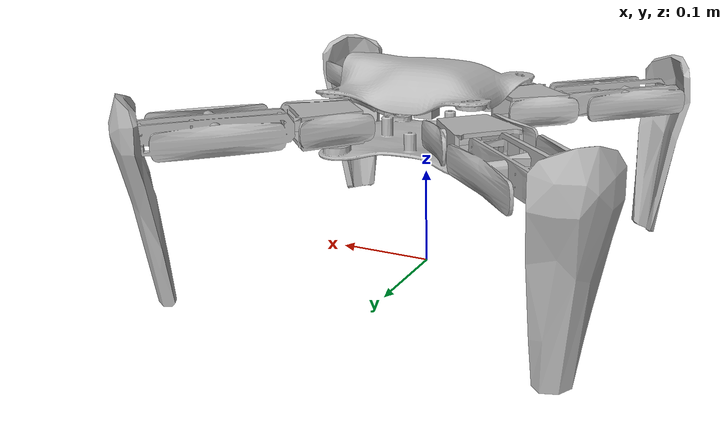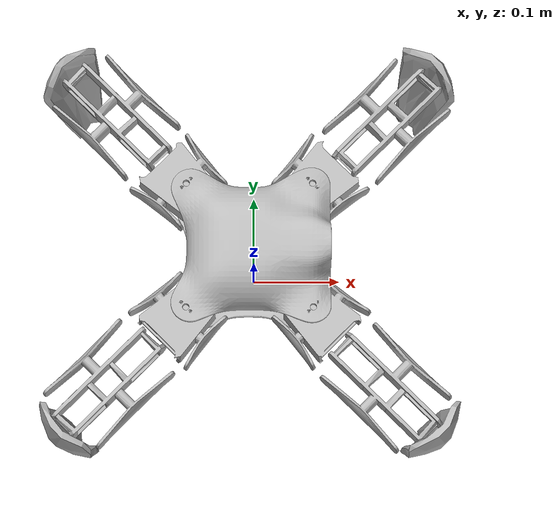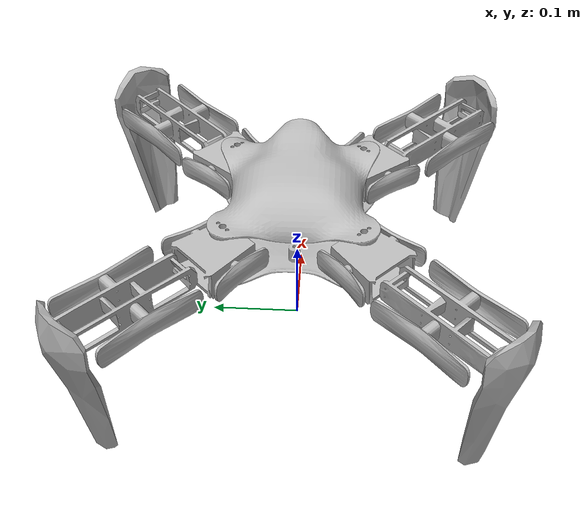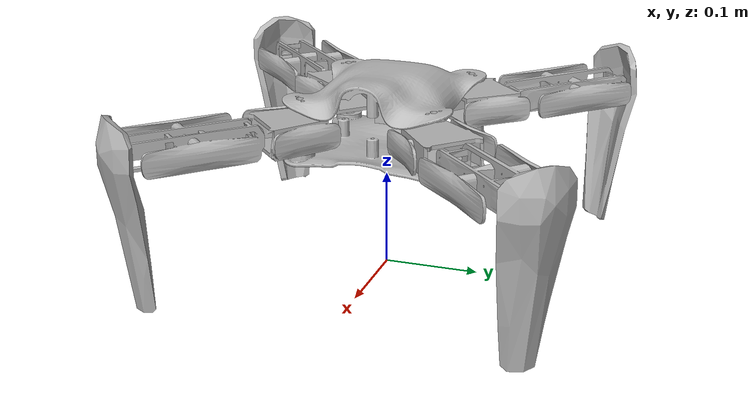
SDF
<sdf version='1.6'>
  <model name='jebediah'>
    <link name='base_link'>
      <pose frame=''>0 0 0 0 -0 0</pose>
      <inertial>
        <pose frame=''>0 0 0 0 -0 0</pose>
        <mass>0.804</mass>
        <inertia>
          <ixx>0.00102328</ixx>
          <ixy>-1.09233e-06</ixy>
          <ixz>-1.70446e-05</ixz>
          <iyy>0.00112582</iyy>
          <iyz>-2.26629e-07</iyz>
          <izz>0.00147666</izz>
        </inertia>
      </inertial>
      <collision name='base_link_collision'>
        <pose frame=''>0 0 0 0 -0 0</pose>
        <geometry>
          <mesh>
            <scale>1 1 1</scale>
            <uri>model://jebediah/meshes/base_link_collision.stl</uri>
          </mesh>
        </geometry>
      </collision>
      <collision name='base_link_inertia_collision_1'>
        <pose frame=''>0 0 0 0 -0 0</pose>
        <geometry>
          <box>
            <size>0.02 0.02 0.02</size>
          </box>
        </geometry>
      </collision>
      <visual name='base_link_visual'>
        <pose frame=''>0 0 0 0 -0 0</pose>
        <geometry>
          <mesh>
            <scale>1 1 1</scale>
            <uri>model://jebediah/meshes/base_link.stl</uri>
          </mesh>
        </geometry>
      </visual>
      <visual name='base_link_inertia_visual_1'>
        <pose frame=''>0 0 0 0 -0 0</pose>
        <geometry>
          <box>
            <size>0.02 0.02 0.02</size>
          </box>
        </geometry>
      </visual>
    </link>
    <link name='coxa_1'>
      <pose frame=''>0.064888 -0.069996 -0.034543 0 -0 -0.78456</pose>
      <inertial>
        <pose frame=''>0.01481 -2.2e-05 0.029381 0 -0 0</pose>
        <mass>0.124104</mass>
        <inertia>
          <ixx>8.18267e-05</ixx>
          <ixy>-1.14316e-08</ixy>
          <ixz>6.1428e-07</ixz>
          <iyy>7.27029e-05</iyy>
          <iyz>2.00528e-08</iyz>
          <izz>0.000120694</izz>
        </inertia>
      </inertial>
      <collision name='coxa_1_collision'>
        <pose frame=''>0 0 0 0 -0 0</pose>
        <geometry>
          <mesh>
            <scale>1 1 1</scale>
            <uri>model://jebediah/meshes/coxa_collision.stl</uri>
          </mesh>
        </geometry>
      </collision>
      <visual name='coxa_1_visual'>
        <pose frame=''>0 0 0 0 -0 0</pose>
        <geometry>
          <mesh>
            <scale>1 1 1</scale>
            <uri>model://jebediah/meshes/coxa.stl</uri>
          </mesh>
        </geometry>
      </visual>
    </link>
    <joint name='servo_coxa_1' type='revolute'>
      <child>coxa_1</child>
      <parent>base_link</parent>
      <axis>
        <xyz>-0 0 1</xyz>
        <limit>
          <lower>-1.4</lower>
          <upper>1.4</upper>
          <effort>0.9</effort>
          <velocity>5</velocity>
        </limit>
        <dynamics>
          <spring_reference>0</spring_reference>
          <spring_stiffness>0</spring_stiffness>
        </dynamics>
        <use_parent_model_frame>1</use_parent_model_frame>
      </axis>
    </joint>
    <link name='femur_1'>
      <pose frame=''>0.090573 -0.135795 -0.005543 0 -0 -0.78456</pose>
      <inertial>
        <pose frame=''>0.051468 0.026889 1.6e-05 0 -0 0</pose>
        <mass>0.158176</mass>
        <inertia>
          <ixx>8.72873e-05</ixx>
          <ixy>1.35181e-10</ixy>
          <ixz>-6.32792e-12</ixz>
          <iyy>0.000251934</iyy>
          <iyz>-3.84978e-08</iyz>
          <izz>0.000324907</izz>
        </inertia>
      </inertial>
      <collision name='femur_1_collision'>
        <pose frame=''>0 0 0 0 -0 0</pose>
        <geometry>
          <mesh>
            <scale>1 1 1</scale>
            <uri>model://jebediah/meshes/femur_collision.stl</uri>
          </mesh>
        </geometry>
      </collision>
      <visual name='femur_1_visual'>
        <pose frame=''>0 0 0 0 -0 0</pose>
        <geometry>
          <mesh>
            <scale>1 1 1</scale>
            <uri>model://jebediah/meshes/femur.stl</uri>
          </mesh>
        </geometry>
      </visual>
    </link>
    <joint name='servo_femur_1_1' type='revolute'>
      <child>femur_1</child>
      <parent>coxa_1</parent>
      <axis>
        <xyz>0.706514 0.707699 0</xyz>
        <limit>
          <lower>-1.4</lower>
          <upper>1.4</upper>
          <effort>0.9</effort>
          <velocity>5</velocity>
        </limit>
        <dynamics>
          <spring_reference>0</spring_reference>
          <spring_stiffness>0</spring_stiffness>
        </dynamics>
        <use_parent_model_frame>1</use_parent_model_frame>
      </axis>
    </joint>
    <link name='tibia_1'>
      <pose frame=''>0.183502 -0.188411 -0.005543 0 -0 -0.78456</pose>
      <inertial>
        <pose frame=''>0.017792 -3.6e-05 -0.048313 0 -0 0</pose>
        <mass>0.170868</mass>
        <inertia>
          <ixx>0.000589379</ixx>
          <ixy>3.67753e-09</ixy>
          <ixz>-6.30008e-05</ixz>
          <iyy>0.000541032</iyy>
          <iyz>-9.23621e-09</iyz>
          <izz>8.24623e-05</izz>
        </inertia>
      </inertial>
      <collision name='tibia_1_col_collision'>
        <pose frame=''>0 0 0 0 -0 0</pose>
        <geometry>
          <mesh>
            <scale>1 1 1</scale>
            <uri>model://jebediah/meshes/tibia_collision.stl</uri>
          </mesh>
        </geometry>
        <surface>
          <contact>
            <ode/>
          </contact>
          <friction>
            <ode/>
          </friction>
        </surface>
      </collision>
      <visual name='tibia_1_visual'>
        <pose frame=''>0 0 0 0 -0 0</pose>
        <geometry>
          <mesh>
            <scale>1 1 1</scale>
            <uri>model://jebediah/meshes/tibia.stl</uri>
          </mesh>
        </geometry>
        <material>
          <script>
            <uri>__default__</uri>
            <name>__default__</name>
          </script>
        </material>
      </visual>
      <gravity>1</gravity>
      <velocity_decay/>
      <sensor name='tibia_1_conctact_sensor' type='contact'>
        <always_on>1</always_on>
        <update_rate>50</update_rate>
        <contact>
          <collision>tibia_1_col_collision</collision>
          <topic>__default_topic__</topic>
        </contact>
        <plugin name='tibia_1_bumper' filename='libgazebo_ros_bumper.so'>
          <bumperTopicName>jebediah/tibia_1_conctact_sensor</bumperTopicName>
          <frameName>tibia_1</frameName>
        </plugin>
      </sensor>
    </link>
    <joint name='servo_femur_1_2' type='revolute'>
      <child>tibia_1</child>
      <parent>femur_1</parent>
      <axis>
        <xyz>0.706514 0.707699 0</xyz>
        <limit>
          <lower>-1.4</lower>
          <upper>1.4</upper>
          <effort>0.9</effort>
          <velocity>5</velocity>
        </limit>
        <dynamics>
          <spring_reference>0</spring_reference>
          <spring_stiffness>0</spring_stiffness>
        </dynamics>
        <use_parent_model_frame>1</use_parent_model_frame>
      </axis>
    </joint>
    <link name='coxa_2'>
      <pose frame=''>0.064888 0.070004 -0.034543 -0 -0 0.78623</pose>
      <inertial>
        <pose frame=''>0.01481 -2.2e-05 0.029381 0 -0 0</pose>
        <mass>0.124104</mass>
        <inertia>
          <ixx>8.18267e-05</ixx>
          <ixy>-1.14316e-08</ixy>
          <ixz>6.1428e-07</ixz>
          <iyy>7.27029e-05</iyy>
          <iyz>2.00528e-08</iyz>
          <izz>0.000120694</izz>
        </inertia>
      </inertial>
      <collision name='coxa_2_collision'>
        <pose frame=''>0 0 0 0 -0 0</pose>
        <geometry>
          <mesh>
            <scale>1 1 1</scale>
            <uri>model://jebediah/meshes/coxa_collision.stl</uri>
          </mesh>
        </geometry>
      </collision>
      <visual name='coxa_2_visual'>
        <pose frame=''>0 0 0 0 -0 0</pose>
        <geometry>
          <mesh>
            <scale>1 1 1</scale>
            <uri>model://jebediah/meshes/coxa.stl</uri>
          </mesh>
        </geometry>
      </visual>
    </link>
    <joint name='servo_coxa_2' type='revolute'>
      <child>coxa_2</child>
      <parent>base_link</parent>
      <axis>
        <xyz>-0 0 1</xyz>
        <limit>
          <lower>-1.4</lower>
          <upper>1.4</upper>
          <effort>0.9</effort>
          <velocity>5</velocity>
        </limit>
        <dynamics>
          <spring_reference>0</spring_reference>
          <spring_stiffness>0</spring_stiffness>
        </dynamics>
        <use_parent_model_frame>1</use_parent_model_frame>
      </axis>
    </joint>
    <link name='femur_2'>
      <pose frame=''>0.130687 0.095689 -0.005543 -0 -0 0.78623</pose>
      <inertial>
        <pose frame=''>0.051468 0.026889 1.6e-05 0 -0 0</pose>
        <mass>0.158176</mass>
        <inertia>
          <ixx>8.72873e-05</ixx>
          <ixy>1.35178e-10</ixy>
          <ixz>-6.32836e-12</ixz>
          <iyy>0.000251934</iyy>
          <iyz>-3.84978e-08</iyz>
          <izz>0.000324907</izz>
        </inertia>
      </inertial>
      <collision name='femur_2_collision'>
        <pose frame=''>0 0 0 0 -0 0</pose>
        <geometry>
          <mesh>
            <scale>1 1 1</scale>
            <uri>model://jebediah/meshes/femur_collision.stl</uri>
          </mesh>
        </geometry>
      </collision>
      <visual name='femur_2_visual'>
        <pose frame=''>0 0 0 0 -0 0</pose>
        <geometry>
          <mesh>
            <scale>1 1 1</scale>
            <uri>model://jebediah/meshes/femur.stl</uri>
          </mesh>
        </geometry>
      </visual>
    </link>
    <joint name='servo_femur_2_1' type='revolute'>
      <child>femur_2</child>
      <parent>coxa_2</parent>
      <axis>
        <xyz>0.707695 -0.706518 0</xyz>
        <limit>
          <lower>-1.4</lower>
          <upper>1.4</upper>
          <effort>0.9</effort>
          <velocity>5</velocity>
        </limit>
        <dynamics>
          <spring_reference>0</spring_reference>
          <spring_stiffness>0</spring_stiffness>
        </dynamics>
        <use_parent_model_frame>1</use_parent_model_frame>
      </axis>
    </joint>
    <link name='tibia_2'>
      <pose frame=''>0.183304 0.188617 -0.005543 -0 -0 0.78623</pose>
      <inertial>
        <pose frame=''>0.017792 -3.6e-05 -0.048313 0 -0 0</pose>
        <mass>0.170868</mass>
        <inertia>
          <ixx>0.000589379</ixx>
          <ixy>3.68459e-09</ixy>
          <ixz>-6.30008e-05</ixz>
          <iyy>0.000541032</iyy>
          <iyz>-9.2363e-09</iyz>
          <izz>8.24623e-05</izz>
        </inertia>
      </inertial>
      <collision name='tibia_2_col_collision'>
        <pose frame=''>0 0 0 0 -0 0</pose>
        <geometry>
          <mesh>
            <scale>1 1 1</scale>
            <uri>model://jebediah/meshes/tibia_collision.stl</uri>
          </mesh>
        </geometry>
        <surface>
          <contact>
            <ode/>
          </contact>
          <friction>
            <ode/>
          </friction>
        </surface>
      </collision>
      <visual name='tibia_2_visual'>
        <pose frame=''>0 0 0 0 -0 0</pose>
        <geometry>
          <mesh>
            <scale>1 1 1</scale>
            <uri>model://jebediah/meshes/tibia.stl</uri>
          </mesh>
        </geometry>
        <material>
          <script>
            <uri>__default__</uri>
            <name>__default__</name>
          </script>
        </material>
      </visual>
      <gravity>1</gravity>
      <velocity_decay/>
      <sensor name='tibia_2_conctact_sensor' type='contact'>
        <always_on>1</always_on>
        <update_rate>50</update_rate>
        <contact>
          <collision>tibia_2_col_collision</collision>
          <topic>__default_topic__</topic>
        </contact>
        <plugin name='tibia_2_bumper' filename='libgazebo_ros_bumper.so'>
          <bumperTopicName>jebediah/tibia_2_conctact_sensor</bumperTopicName>
          <frameName>tibia_2</frameName>
        </plugin>
      </sensor>
    </link>
    <joint name='servo_femur_2_2' type='revolute'>
      <child>tibia_2</child>
      <parent>femur_2</parent>
      <axis>
        <xyz>0.707695 -0.706518 0</xyz>
        <limit>
          <lower>-1.4</lower>
          <upper>1.4</upper>
          <effort>0.9</effort>
          <velocity>5</velocity>
        </limit>
        <dynamics>
          <spring_reference>0</spring_reference>
          <spring_stiffness>0</spring_stiffness>
        </dynamics>
        <use_parent_model_frame>1</use_parent_model_frame>
      </axis>
    </joint>
    <link name='coxa_3'>
      <pose frame=''>-0.075112 0.070004 -0.034543 -0 0 2.357</pose>
      <inertial>
        <pose frame=''>0.01481 -2.2e-05 0.029381 0 -0 0</pose>
        <mass>0.124104</mass>
        <inertia>
          <ixx>8.18267e-05</ixx>
          <ixy>-1.14302e-08</ixy>
          <ixz>6.1428e-07</ixz>
          <iyy>7.27029e-05</iyy>
          <iyz>2.00526e-08</iyz>
          <izz>0.000120694</izz>
        </inertia>
      </inertial>
      <collision name='coxa_3_collision'>
        <pose frame=''>0 0 0 0 -0 0</pose>
        <geometry>
          <mesh>
            <scale>1 1 1</scale>
            <uri>model://jebediah/meshes/coxa_collision.stl</uri>
          </mesh>
        </geometry>
      </collision>
      <visual name='coxa_3_visual'>
        <pose frame=''>0 0 0 0 -0 0</pose>
        <geometry>
          <mesh>
            <scale>1 1 1</scale>
            <uri>model://jebediah/meshes/coxa.stl</uri>
          </mesh>
        </geometry>
      </visual>
    </link>
    <joint name='servo_coxa_3' type='revolute'>
      <child>coxa_3</child>
      <parent>base_link</parent>
      <axis>
        <xyz>-0 -0 1</xyz>
        <limit>
          <lower>-1.4</lower>
          <upper>1.4</upper>
          <effort>0.9</effort>
          <velocity>5</velocity>
        </limit>
        <dynamics>
          <spring_reference>0</spring_reference>
          <spring_stiffness>0</spring_stiffness>
        </dynamics>
        <use_parent_model_frame>1</use_parent_model_frame>
      </axis>
    </joint>
    <link name='femur'>
      <pose frame=''>-0.100795 0.135804 -0.005543 -0 0 2.357</pose>
      <inertial>
        <pose frame=''>0.051468 0.026889 1.6e-05 0 -0 0</pose>
        <mass>0.158176</mass>
        <inertia>
          <ixx>8.72873e-05</ixx>
          <ixy>1.35183e-10</ixy>
          <ixz>-6.32861e-12</ixz>
          <iyy>0.000251934</iyy>
          <iyz>-3.84978e-08</iyz>
          <izz>0.000324907</izz>
        </inertia>
      </inertial>
      <collision name='femur_collision'>
        <pose frame=''>0 0 0 0 -0 0</pose>
        <geometry>
          <mesh>
            <scale>1 1 1</scale>
            <uri>model://jebediah/meshes/femur_collision.stl</uri>
          </mesh>
        </geometry>
      </collision>
      <visual name='femur_visual'>
        <pose frame=''>0 0 0 0 -0 0</pose>
        <geometry>
          <mesh>
            <scale>1 1 1</scale>
            <uri>model://jebediah/meshes/femur.stl</uri>
          </mesh>
        </geometry>
      </visual>
    </link>
    <joint name='servo_femur_3_1' type='revolute'>
      <child>femur</child>
      <parent>coxa_3</parent>
      <axis>
        <xyz>0.706537 0.707676 0</xyz>
        <limit>
          <lower>-1.4</lower>
          <upper>1.4</upper>
          <effort>0.9</effort>
          <velocity>5</velocity>
        </limit>
        <dynamics>
          <spring_reference>0</spring_reference>
          <spring_stiffness>0</spring_stiffness>
        </dynamics>
        <use_parent_model_frame>1</use_parent_model_frame>
      </axis>
    </joint>
    <link name='tibia_3'>
      <pose frame=''>-0.193722 0.188423 -0.005543 -0 0 2.357</pose>
      <inertial>
        <pose frame=''>0.017792 -3.6e-05 -0.048313 0 -0 0</pose>
        <mass>0.170868</mass>
        <inertia>
          <ixx>0.000589379</ixx>
          <ixy>3.6838e-09</ixy>
          <ixz>-6.30008e-05</ixz>
          <iyy>0.000541032</iyy>
          <iyz>-9.2364e-09</iyz>
          <izz>8.24623e-05</izz>
        </inertia>
      </inertial>
      <collision name='tibia_3_col_collision'>
        <pose frame=''>0 0 0 0 -0 0</pose>
        <geometry>
          <mesh>
            <scale>1 1 1</scale>
            <uri>model://jebediah/meshes/tibia_collision.stl</uri>
          </mesh>
        </geometry>
        <surface>
          <contact>
            <ode/>
          </contact>
          <friction>
            <ode/>
          </friction>
        </surface>
      </collision>
      <visual name='tibia_3_visual'>
        <pose frame=''>0 0 0 0 -0 0</pose>
        <geometry>
          <mesh>
            <scale>1 1 1</scale>
            <uri>model://jebediah/meshes/tibia.stl</uri>
          </mesh>
        </geometry>
        <material>
          <script>
            <uri>__default__</uri>
            <name>__default__</name>
          </script>
        </material>
      </visual>
      <gravity>1</gravity>
      <velocity_decay/>
      <sensor name='tibia_3_conctact_sensor' type='contact'>
        <always_on>1</always_on>
        <update_rate>50</update_rate>
        <contact>
          <collision>tibia_3_col_collision</collision>
          <topic>__default_topic__</topic>
        </contact>
        <plugin name='tibia_3_bumper' filename='libgazebo_ros_bumper.so'>
          <bumperTopicName>jebediah/tibia_3_conctact_sensor</bumperTopicName>
          <frameName>tibia_3</frameName>
        </plugin>
      </sensor>
    </link>
    <joint name='servo_femur_3_2' type='revolute'>
      <child>tibia_3</child>
      <parent>femur</parent>
      <axis>
        <xyz>0.706537 0.707676 0</xyz>
        <limit>
          <lower>-1.4</lower>
          <upper>1.4</upper>
          <effort>0.9</effort>
          <velocity>5</velocity>
        </limit>
        <dynamics>
          <spring_reference>0</spring_reference>
          <spring_stiffness>0</spring_stiffness>
        </dynamics>
        <use_parent_model_frame>1</use_parent_model_frame>
      </axis>
    </joint>
    <link name='coxa_4'>
      <pose frame=''>-0.075112 -0.069996 -0.034543 0 0 -2.3554</pose>
      <inertial>
        <pose frame=''>0.01481 -2.2e-05 0.029381 0 -0 0</pose>
        <mass>0.124104</mass>
        <inertia>
          <ixx>8.18267e-05</ixx>
          <ixy>-1.14318e-08</ixy>
          <ixz>6.1428e-07</ixz>
          <iyy>7.27029e-05</iyy>
          <iyz>2.00528e-08</iyz>
          <izz>0.000120694</izz>
        </inertia>
      </inertial>
      <collision name='coxa_4_collision'>
        <pose frame=''>0 0 0 0 -0 0</pose>
        <geometry>
          <mesh>
            <scale>1 1 1</scale>
            <uri>model://jebediah/meshes/coxa_collision.stl</uri>
          </mesh>
        </geometry>
      </collision>
      <visual name='coxa_4_visual'>
        <pose frame=''>0 0 0 0 -0 0</pose>
        <geometry>
          <mesh>
            <scale>1 1 1</scale>
            <uri>model://jebediah/meshes/coxa.stl</uri>
          </mesh>
        </geometry>
      </visual>
    </link>
    <joint name='servo_coxa_4' type='revolute'>
      <child>coxa_4</child>
      <parent>base_link</parent>
      <axis>
        <xyz>-0 -0 1</xyz>
        <limit>
          <lower>-1.4</lower>
          <upper>1.4</upper>
          <effort>0.9</effort>
          <velocity>5</velocity>
        </limit>
        <dynamics>
          <spring_reference>0</spring_reference>
          <spring_stiffness>0</spring_stiffness>
        </dynamics>
        <use_parent_model_frame>1</use_parent_model_frame>
      </axis>
    </joint>
    <link name='femur_4'>
      <pose frame=''>-0.140912 -0.095678 -0.005543 0 0 -2.3554</pose>
      <inertial>
        <pose frame=''>0.051468 0.026889 1.6e-05 0 -0 0</pose>
        <mass>0.158176</mass>
        <inertia>
          <ixx>8.72873e-05</ixx>
          <ixy>1.35179e-10</ixy>
          <ixz>-6.32899e-12</ixz>
          <iyy>0.000251934</iyy>
          <iyz>-3.84978e-08</iyz>
          <izz>0.000324907</izz>
        </inertia>
      </inertial>
      <collision name='femur_4_collision'>
        <pose frame=''>0 0 0 0 -0 0</pose>
        <geometry>
          <mesh>
            <scale>1 1 1</scale>
            <uri>model://jebediah/meshes/femur_collision.stl</uri>
          </mesh>
        </geometry>
      </collision>
      <visual name='femur_4_visual'>
        <pose frame=''>0 0 0 0 -0 0</pose>
        <geometry>
          <mesh>
            <scale>1 1 1</scale>
            <uri>model://jebediah/meshes/femur.stl</uri>
          </mesh>
        </geometry>
      </visual>
    </link>
    <joint name='servo_femur_4_1' type='revolute'>
      <child>femur_4</child>
      <parent>coxa_4</parent>
      <axis>
        <xyz>0.707668 -0.706545 0</xyz>
        <limit>
          <lower>-1.4</lower>
          <upper>1.4</upper>
          <effort>0.9</effort>
          <velocity>5</velocity>
        </limit>
        <dynamics>
          <spring_reference>0</spring_reference>
          <spring_stiffness>0</spring_stiffness>
        </dynamics>
        <use_parent_model_frame>1</use_parent_model_frame>
      </axis>
    </joint>
    <link name='tibia_4'>
      <pose frame=''>-0.193532 -0.188605 -0.005543 0 0 -2.3554</pose>
      <inertial>
        <pose frame=''>0.017792 -3.6e-05 -0.048313 0 -0 0</pose>
        <mass>0.170868</mass>
        <inertia>
          <ixx>0.000589379</ixx>
          <ixy>3.67753e-09</ixy>
          <ixz>-6.30008e-05</ixz>
          <iyy>0.000541032</iyy>
          <iyz>-9.23625e-09</iyz>
          <izz>8.24623e-05</izz>
        </inertia>
      </inertial>
      <collision name='tibia_4_col_collision'>
        <pose frame=''>0 0 0 0 -0 0</pose>
        <geometry>
          <mesh>
            <scale>1 1 1</scale>
            <uri>model://jebediah/meshes/tibia_collision.stl</uri>
          </mesh>
        </geometry>
        <surface>
          <contact>
            <ode/>
          </contact>
          <friction>
            <ode/>
          </friction>
        </surface>
      </collision>
      <visual name='tibia_4_visual'>
        <pose frame=''>0 0 0 0 -0 0</pose>
        <geometry>
          <mesh>
            <scale>1 1 1</scale>
            <uri>model://jebediah/meshes/tibia.stl</uri>
          </mesh>
        </geometry>
        <material>
          <script>
            <uri>__default__</uri>
            <name>__default__</name>
          </script>
        </material>
      </visual>
      <gravity>1</gravity>
      <velocity_decay/>
      <sensor name='tibia_4_conctact_sensor' type='contact'>
        <always_on>1</always_on>
        <update_rate>50</update_rate>
        <contact>
          <collision>tibia_4_col_collision</collision>
          <topic>__default_topic__</topic>
        </contact>
        <plugin name='tibia_4_bumper' filename='libgazebo_ros_bumper.so'>
          <bumperTopicName>jebediah/tibia_4_conctact_sensor</bumperTopicName>
          <frameName>tibia_4</frameName>
        </plugin>
      </sensor>
    </link>
    <joint name='servo_femur_4_2' type='revolute'>
      <child>tibia_4</child>
      <parent>femur_4</parent>
      <axis>
        <xyz>0.707668 -0.706545 0</xyz>
        <limit>
          <lower>-1.4</lower>
          <upper>1.4</upper>
          <effort>0.9</effort>
          <velocity>5</velocity>
        </limit>
        <dynamics>
          <spring_reference>0</spring_reference>
          <spring_stiffness>0</spring_stiffness>
        </dynamics>
        <use_parent_model_frame>1</use_parent_model_frame>
      </axis>
    </joint>
    <plugin name='p3d_base_controller' filename='libgazebo_ros_p3d.so'>
      <alwaysOn>true</alwaysOn>
      <updateRate>50.0</updateRate>
      <bodyName>base_link</bodyName>
      <topicName>jebediah/Odom</topicName>
      <gaussianNoise>0.01</gaussianNoise>
      <frameName>world</frameName>
      <xyzOffsets>0 0 0</xyzOffsets>
      <rpyOffsets>0 0 0</rpyOffsets>
    </plugin>
    <static>0</static>
    <self_collide>1</self_collide>
    <plugin name='gazebo_ros_control' filename='libgazebo_ros_control.so'>
      <robotNamespace>/jebediah</robotNamespace>
    </plugin>
    <plugin name='imu_controller' filename='libgazebo_ros_imu.so'>
      <alwaysOn>true</alwaysOn>
      <updateRate>50.0</updateRate>
      <bodyName>base_link</bodyName>
      <topicName>jebediah/imu_data</topicName>
      <gaussianNoise>0.034</gaussianNoise>
      <xyzOffsets>0 0 0</xyzOffsets>
      <rpyOffsets>0 0 0</rpyOffsets>
      <interface:position name='imu_position'/>
    </plugin>
    <pose frame=''>0 0 0.1677 0 -0 0</pose>
  </model>
</sdf>
